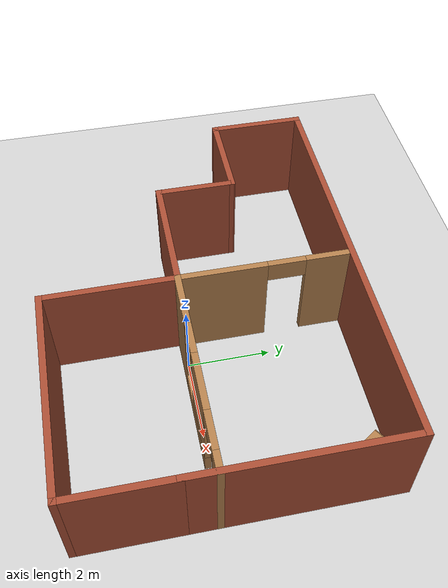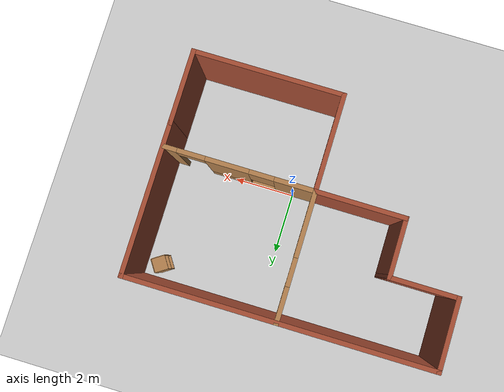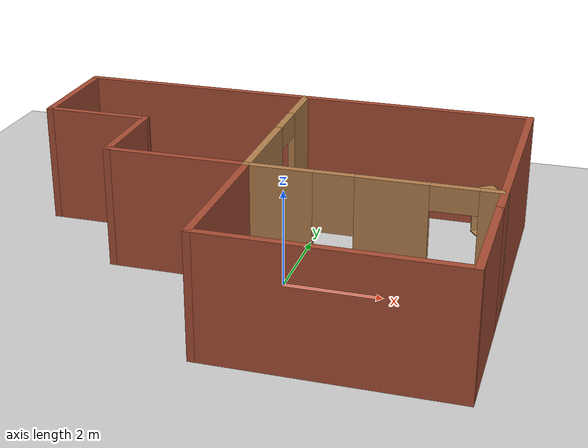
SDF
<sdf version="1.6">
 <world name="__default__">
  <plugin name="hello" filename="libhello.so"/>
  <gravity>0 0 -9.8</gravity>
  <magnetic_field>6e-06 2.3e-05 -4.2e-05</magnetic_field>
  <atmosphere type="adiabatic"/>
  <physics name="default_physics" default="0" type="ode">
   <max_step_size>0.001</max_step_size>
   <real_time_factor>1</real_time_factor>
   <real_time_update_rate>1000</real_time_update_rate>
  </physics>
  <scene><ambient>0.4 0.4 0.4 1</ambient><background>0.7 0.7 0.7 1</background><shadows>1</shadows></scene>
  <spherical_coordinates>
   <surface_model>EARTH_WGS84</surface_model>
   <latitude_deg>0</latitude_deg>
   <longitude_deg>0</longitude_deg>
   <elevation>0</elevation>
   <heading_deg>0</heading_deg>
  </spherical_coordinates>
  <model name="mybuilding">
   <pose>-0.78249 0.44973 0 0 -0 0</pose>
   <link name="Wall_10">
    <collision name="Wall_10_Collision">
     <geometry><box><size>2.30025 0.15 2.5</size></box></geometry>
     <pose>0 0 1.25 0 -0 0</pose>
    </collision>
    <visual name="Wall_10_Visual">
     <pose>0 0 1.25 0 -0 0</pose>
     <geometry><box><size>2.30025 0.15 2.5</size></box></geometry>
     <material>
      <script><uri>file://media/materials/scripts/gazebo.material</uri><name>Gazebo/Bricks</name></script>
      <ambient>1 1 1 1</ambient>
     </material>
     <meta><layer>0</layer></meta>
    </visual>
    <pose>-3.84999 1.34978 0 0 0 -3.14139</pose>
   </link>
   <link name="Wall_11">
    <collision name="Wall_11_Collision">
     <geometry><box><size>2.40056 0.15 2.5</size></box></geometry>
     <pose>0 0 1.25 0 -0 0</pose>
    </collision>
    <visual name="Wall_11_Visual">
     <pose>0 0 1.25 0 -0 0</pose>
     <geometry><box><size>2.40056 0.15 2.5</size></box></geometry>
     <material>
      <script><uri>file://media/materials/scripts/gazebo.material</uri><name>Gazebo/Bricks</name></script>
      <ambient>1 1 1 1</ambient>
     </material>
     <meta><layer>0</layer></meta>
    </visual>
    <pose>-4.92512 2.47456 0 0 -0 1.5708</pose>
   </link>
   <link name="Wall_13">
    <pose>2.50013 -0.500002 0 0 -0 0</pose>
    <visual name="Wall_13_Visual_0">
     <pose>-1.80816 0 1.25 0 -0 0</pose>
     <geometry><box><size>1.38368 0.15 2.5</size></box></geometry>
     <material>
      <script><uri>file://media/materials/scripts/gazebo.material</uri><name>Gazebo/Wood</name></script>
      <ambient>1 1 1 1</ambient>
     </material>
     <meta><layer>0</layer></meta>
    </visual>
    <collision name="Wall_13_Collision_0">
     <geometry><box><size>1.38368 0.15 2.5</size></box></geometry>
     <pose>-1.80816 0 1.25 0 -0 0</pose>
    </collision>
    <visual name="Wall_13_Visual_1">
     <pose>2.24096 0 1.25 0 -0 0</pose>
     <geometry><box><size>0.518074 0.15 2.5</size></box></geometry>
     <material>
      <script><uri>file://media/materials/scripts/gazebo.material</uri><name>Gazebo/Wood</name></script>
      <ambient>1 1 1 1</ambient>
     </material>
     <meta><layer>0</layer></meta>
    </visual>
    <collision name="Wall_13_Collision_1">
     <geometry><box><size>0.518074 0.15 2.5</size></box></geometry>
     <pose>2.24096 0 1.25 0 -0 0</pose>
    </collision>
    <visual name="Wall_13_Visual_2">
     <pose>-0.017199 0 0.25 0 -0 0</pose>
     <geometry><box><size>2.19825 0.15 0.5</size></box></geometry>
     <material>
      <script><uri>file://media/materials/scripts/gazebo.material</uri><name>Gazebo/Wood</name></script>
      <ambient>1 1 1 1</ambient>
     </material>
     <meta><layer>0</layer></meta>
    </visual>
    <collision name="Wall_13_Collision_2">
     <geometry><box><size>2.19825 0.15 0.5</size></box></geometry>
     <pose>-0.017199 0 0.25 0 -0 0</pose>
    </collision>
    <visual name="Wall_13_Visual_3">
     <pose>0.382801 0 1.5 0 -0 0</pose>
     <geometry><box><size>1.39825 0.15 2</size></box></geometry>
     <material>
      <script><uri>file://media/materials/scripts/gazebo.material</uri><name>Gazebo/Wood</name></script>
      <ambient>1 1 1 1</ambient>
     </material>
     <meta><layer>0</layer></meta>
    </visual>
    <collision name="Wall_13_Collision_3">
     <geometry><box><size>1.39825 0.15 2</size></box></geometry>
     <pose>0.382801 0 1.5 0 -0 0</pose>
    </collision>
    <visual name="Wall_13_Visual_4">
     <pose>-0.716324 0 1.9 0 -0 0</pose>
     <geometry><box><size>0.8 0.15 1.2</size></box></geometry>
     <material>
      <script><uri>file://media/materials/scripts/gazebo.material</uri><name>Gazebo/Wood</name></script>
      <ambient>1 1 1 1</ambient>
     </material>
     <meta><layer>0</layer></meta>
    </visual>
    <collision name="Wall_13_Collision_4">
     <geometry><box><size>0.8 0.15 1.2</size></box></geometry>
     <pose>-0.716324 0 1.9 0 -0 0</pose>
    </collision>
    <visual name="Wall_13_Visual_5">
     <pose>1.53193 0 2.25 0 -0 0</pose>
     <geometry><box><size>0.9 0.15 0.5</size></box></geometry>
     <material>
      <script><uri>file://media/materials/scripts/gazebo.material</uri><name>Gazebo/Wood</name></script>
      <ambient>1 1 1 1</ambient>
     </material>
     <meta><layer>0</layer></meta>
    </visual>
    <collision name="Wall_13_Collision_5">
     <geometry><box><size>0.9 0.15 0.5</size></box></geometry>
     <pose>1.53193 0 2.25 0 -0 0</pose>
    </collision>
   </link>
   <link name="Wall_15">
    <pose>0.075133 1.55 0 0 -0 1.5708</pose>
    <visual name="Wall_15_Visual_0">
     <pose>-1.04383 0 1.25 0 -0 0</pose>
     <geometry><box><size>2.16234 0.15 2.5</size></box></geometry>
     <material>
      <script><uri>file://media/materials/scripts/gazebo.material</uri><name>Gazebo/Wood</name></script>
      <ambient>1 1 1 1</ambient>
     </material>
     <meta><layer>0</layer></meta>
    </visual>
    <collision name="Wall_15_Collision_0">
     <geometry><box><size>2.16234 0.15 2.5</size></box></geometry>
     <pose>-1.04383 0 1.25 0 -0 0</pose>
    </collision>
    <visual name="Wall_15_Visual_1">
     <pose>1.53117 0 1.25 0 -0 0</pose>
     <geometry><box><size>1.18766 0.15 2.5</size></box></geometry>
     <material>
      <script><uri>file://media/materials/scripts/gazebo.material</uri><name>Gazebo/Wood</name></script>
      <ambient>1 1 1 1</ambient>
     </material>
     <meta><layer>0</layer></meta>
    </visual>
    <collision name="Wall_15_Collision_1">
     <geometry><box><size>1.18766 0.15 2.5</size></box></geometry>
     <pose>1.53117 0 1.25 0 -0 0</pose>
    </collision>
    <visual name="Wall_15_Visual_2">
     <pose>0.487335 0 2.25 0 -0 0</pose>
     <geometry><box><size>0.9 0.15 0.5</size></box></geometry>
     <material>
      <script><uri>file://media/materials/scripts/gazebo.material</uri><name>Gazebo/Wood</name></script>
      <ambient>1 1 1 1</ambient>
     </material>
     <meta><layer>0</layer></meta>
    </visual>
    <collision name="Wall_15_Collision_2">
     <geometry><box><size>0.9 0.15 0.5</size></box></geometry>
     <pose>0.487335 0 2.25 0 -0 0</pose>
    </collision>
   </link>
   <link name="Wall_3">
    <collision name="Wall_3_Collision">
     <geometry><box><size>10 0.15 2.5</size></box></geometry>
     <pose>0 0 1.25 0 -0 0</pose>
    </collision>
    <visual name="Wall_3_Visual">
     <pose>0 0 1.25 0 -0 0</pose>
     <geometry><box><size>10 0.15 2.5</size></box></geometry>
     <material>
      <script><uri>file://media/materials/scripts/gazebo.material</uri><name>Gazebo/Bricks</name></script>
      <ambient>1 1 1 1</ambient>
     </material>
     <meta><layer>0</layer></meta>
    </visual>
    <pose>8e-06 3.59978 0 0 -0 4.5e-05</pose>
   </link>
   <link name="Wall_4">
    <collision name="Wall_4_Collision">
     <geometry><box><size>5 0.15 2.5</size></box></geometry>
     <pose>0 0 1.25 0 -0 0</pose>
    </collision>
    <visual name="Wall_4_Visual">
     <pose>0 0 1.25 0 -0 0</pose>
     <geometry><box><size>5 0.15 2.5</size></box></geometry>
     <material>
      <script><uri>file://media/materials/scripts/gazebo.material</uri><name>Gazebo/Bricks</name></script>
      <ambient>1 1 1 1</ambient>
     </material>
     <meta><layer>0</layer></meta>
    </visual>
    <pose>4.92513 1.175 0 0 0 -1.5708</pose>
   </link>
   <link name="Wall_5">
    <collision name="Wall_5_Collision">
     <geometry><box><size>2.5 0.15 2.5</size></box></geometry>
     <pose>0 0 1.25 0 -0 0</pose>
    </collision>
    <visual name="Wall_5_Visual">
     <pose>0 0 1.25 0 -0 0</pose>
     <geometry><box><size>2.5 0.15 2.5</size></box></geometry>
     <material>
      <script><uri>file://media/materials/scripts/gazebo.material</uri><name>Gazebo/Bricks</name></script>
      <ambient>1 1 1 1</ambient>
     </material>
     <meta><layer>0</layer></meta>
    </visual>
    <pose>4.92513 -2.425 0 0 0 -1.5708</pose>
   </link>
   <link name="Wall_6">
    <collision name="Wall_6_Collision">
     <geometry><box><size>5 0.15 2.5</size></box></geometry>
     <pose>0 0 1.25 0 -0 0</pose>
    </collision>
    <visual name="Wall_6_Visual">
     <pose>0 0 1.25 0 -0 0</pose>
     <geometry><box><size>5 0.15 2.5</size></box></geometry>
     <material>
      <script><uri>file://media/materials/scripts/gazebo.material</uri><name>Gazebo/Bricks</name></script>
      <ambient>1 1 1 1</ambient>
     </material>
     <meta><layer>0</layer></meta>
    </visual>
    <pose>2.50013 -3.6 0 0 -0 3.14159</pose>
   </link>
   <link name="Wall_7">
    <collision name="Wall_7_Collision">
     <geometry><box><size>3.25 0.15 2.5</size></box></geometry>
     <pose>0 0 1.25 0 -0 0</pose>
    </collision>
    <visual name="Wall_7_Visual">
     <pose>0 0 1.25 0 -0 0</pose>
     <geometry><box><size>3.25 0.15 2.5</size></box></geometry>
     <material>
      <script><uri>file://media/materials/scripts/gazebo.material</uri><name>Gazebo/Bricks</name></script>
      <ambient>1 1 1 1</ambient>
     </material>
     <meta><layer>0</layer></meta>
    </visual>
    <pose>0.075133 -2.05 0 0 -0 1.5708</pose>
   </link>
   <link name="Wall_8">
    <collision name="Wall_8_Collision">
     <geometry><box><size>3 0.15 2.5</size></box></geometry>
     <pose>0 0 1.25 0 -0 0</pose>
    </collision>
    <visual name="Wall_8_Visual">
     <pose>0 0 1.25 0 -0 0</pose>
     <geometry><box><size>3 0.15 2.5</size></box></geometry>
     <material>
      <script><uri>file://media/materials/scripts/gazebo.material</uri><name>Gazebo/Bricks</name></script>
      <ambient>1 1 1 1</ambient>
     </material>
     <meta><layer>0</layer></meta>
    </visual>
    <pose>-1.34987 -0.500002 0 0 -0 3.14159</pose>
   </link>
   <link name="Wall_9">
    <collision name="Wall_9_Collision">
     <geometry><box><size>2 0.15 2.5</size></box></geometry>
     <pose>0 0 1.25 0 -0 0</pose>
    </collision>
    <visual name="Wall_9_Visual">
     <pose>0 0 1.25 0 -0 0</pose>
     <geometry><box><size>2 0.15 2.5</size></box></geometry>
     <material>
      <script><uri>file://media/materials/scripts/gazebo.material</uri><name>Gazebo/Bricks</name></script>
      <ambient>1 1 1 1</ambient>
     </material>
     <meta><layer>0</layer></meta>
    </visual>
    <pose>-2.77487 0.424998 0 0 -0 1.5708</pose>
   </link>
   <static>1</static>
  </model>
  <model name="ground_plane">
   <static>1</static>
   <link name="link">
    <collision name="collision">
     <geometry><plane><normal>0 0 1</normal><size>100 100</size></plane></geometry>
     <surface>
      <contact><collide_bitmask>65535</collide_bitmask></contact>
      <friction><ode><mu>100</mu><mu2>50</mu2></ode></friction>
     </surface>
    </collision>
    <visual name="visual">
     <cast_shadows>0</cast_shadows>
     <geometry><plane><normal>0 0 1</normal><size>100 100</size></plane></geometry>
     <material>
      <script><uri>file://media/materials/scripts/gazebo.material</uri><name>Gazebo/Grey</name></script>
     </material>
    </visual>
   </link>
   <pose>6.29071 0.786283 0 0 -0 0</pose>
  </model>
  <light name="user_directional_light_0" type="directional">
   <pose>-3.91448 -3.66042 1 0 -0 0</pose>
   <diffuse>0.5 0.5 0.5 1</diffuse>
   <specular>0.1 0.1 0.1 1</specular>
   <direction>0.1 0.1 -0.9</direction>
   <attenuation>
    <range>20</range>
    <constant>0.5</constant>
    <linear>0.01</linear>
    <quadratic>0.001</quadratic>
   </attenuation>
  </light>
  <model name="cabinet">
   <static>1</static>
   <link name="cabinet_bottom_plate">
    <inertial>
     <pose>0 0 -1 0 -0 0</pose>
     <inertia><ixx>2.05</ixx><ixy>0</ixy><ixz>0</ixz><iyy>2.05</iyy><iyz>0</iyz><izz>2.05</izz></inertia>
     <mass>25</mass>
    </inertial>
    <collision name="cabinet_bottom_plate_geom">
     <pose>0 0 0.01 0 -0 0</pose>
     <geometry><box><size>0.45 0.45 0.02</size></box></geometry>
    </collision>
    <visual name="cabinet_bottom_plate_geom_visual">
     <pose>0 0 0.01 0 -0 0</pose>
     <geometry><box><size>0.45 0.45 0.02</size></box></geometry>
     <material>
      <script><uri>file://media/materials/scripts/gazebo.material</uri><name>Gazebo/Wood</name></script>
     </material>
    </visual>
    <collision name="cabinet_bottom_plate_geom_cabinet_back_plate">
     <pose>0.235 0 0.51 0 -0 0</pose>
     <geometry><box><size>0.02 0.45 1.02</size></box></geometry>
    </collision>
    <visual name="cabinet_bottom_plate_geom_cabinet_back_plate_visual">
     <pose>0.235 0 0.51 0 -0 0</pose>
     <geometry><box><size>0.02 0.45 1.02</size></box></geometry>
     <material>
      <script><uri>file://media/materials/scripts/gazebo.material</uri><name>Gazebo/Wood</name></script>
     </material>
    </visual>
    <collision name="cabinet_bottom_plate_geom_cabinet_left_plate">
     <pose>0 0.235 0.51 0 -0 0</pose>
     <geometry><box><size>0.45 0.02 1.02</size></box></geometry>
    </collision>
    <visual name="cabinet_bottom_plate_geom_cabinet_left_plate_visual">
     <pose>0 0.235 0.51 0 -0 0</pose>
     <geometry><box><size>0.45 0.02 1.02</size></box></geometry>
     <material>
      <script><uri>file://media/materials/scripts/gazebo.material</uri><name>Gazebo/Wood</name></script>
     </material>
    </visual>
    <collision name="cabinet_bottom_plate_geom_cabinet_middle_plate">
     <pose>0 0 0.51 0 -0 0</pose>
     <geometry><box><size>0.45 0.45 0.02</size></box></geometry>
    </collision>
    <visual name="cabinet_bottom_plate_geom_cabinet_middle_plate_visual">
     <pose>0 0 0.51 0 -0 0</pose>
     <geometry><box><size>0.45 0.45 0.02</size></box></geometry>
     <material>
      <script><uri>file://media/materials/scripts/gazebo.material</uri><name>Gazebo/Wood</name></script>
     </material>
    </visual>
    <collision name="cabinet_bottom_plate_geom_cabinet_right_plate">
     <pose>0 -0.235 0.51 0 -0 0</pose>
     <geometry><box><size>0.45 0.02 1.02</size></box></geometry>
    </collision>
    <visual name="cabinet_bottom_plate_geom_cabinet_right_plate_visual">
     <pose>0 -0.235 0.51 0 -0 0</pose>
     <geometry><box><size>0.45 0.02 1.02</size></box></geometry>
     <material>
      <script><uri>file://media/materials/scripts/gazebo.material</uri><name>Gazebo/Wood</name></script>
     </material>
    </visual>
    <collision name="cabinet_bottom_plate_geom_cabinet_top_plate">
     <pose>0 0 1.01 0 -0 0</pose>
     <geometry><box><size>0.45 0.45 0.02</size></box></geometry>
    </collision>
    <visual name="cabinet_bottom_plate_geom_cabinet_top_plate_visual">
     <pose>0 0 1.01 0 -0 0</pose>
     <geometry><box><size>0.45 0.45 0.02</size></box></geometry>
     <material>
      <script><uri>file://media/materials/scripts/gazebo.material</uri><name>Gazebo/Wood</name></script>
     </material>
    </visual>
   </link>
   <pose>3.44892 3.47472 0 0 -0 0.586906</pose>
  </model>
 </world>
</sdf>
